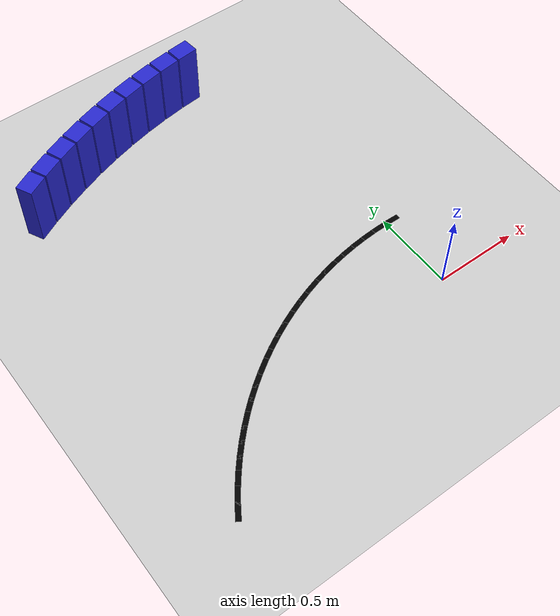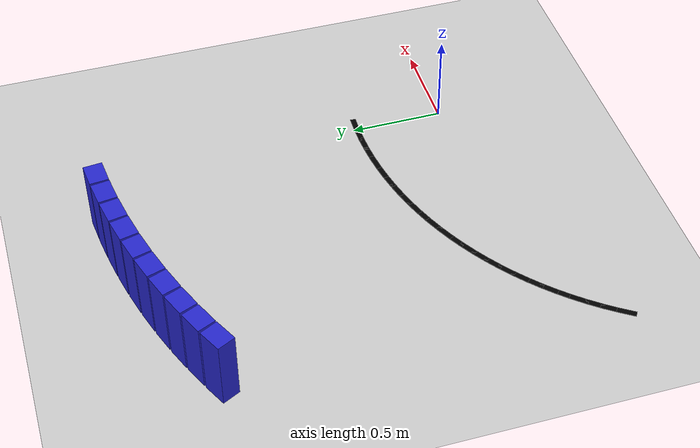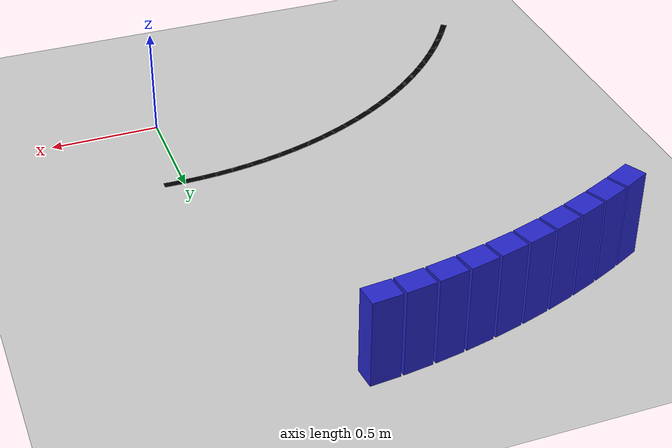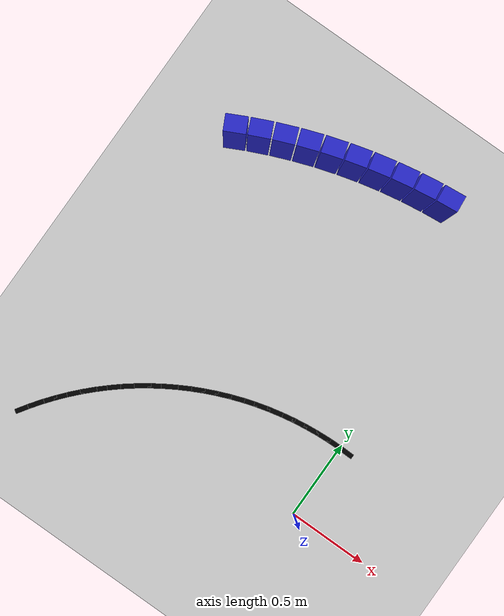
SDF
<sdf version="1.6">
 <world name="new_race_track">
  <include><uri>model://ground_plane</uri></include>
  <include><uri>model://sun</uri></include>
  <model name="race_track">
   <static>true</static>
   <link name="wall_link_108">
    <collision name="c"><geometry><box><size>0.1305 0.1 0.4</size></box></geometry></collision>
    <visual name="v">
     <geometry><box><size>0.1305 0.1 0.4</size></box></geometry>
     <material><ambient>0.15 0.15 0.8 1</ambient><diffuse>0.15 0.15 0.8 1</diffuse></material>
    </visual>
    <pose>-1.5636 1.6109 0.200 0 0 0.4632</pose>
   </link>
   <link name="wall_link_109">
    <collision name="c"><geometry><box><size>0.1305 0.1 0.4</size></box></geometry></collision>
    <visual name="v">
     <geometry><box><size>0.1305 0.1 0.4</size></box></geometry>
     <material><ambient>0.15 0.15 0.8 1</ambient><diffuse>0.15 0.15 0.8 1</diffuse></material>
    </visual>
    <pose>-1.4363 1.6713 0.200 0 0 0.4229</pose>
   </link>
   <link name="wall_link_110">
    <collision name="c"><geometry><box><size>0.1305 0.1 0.4</size></box></geometry></collision>
    <visual name="v">
     <geometry><box><size>0.1305 0.1 0.4</size></box></geometry>
     <material><ambient>0.15 0.15 0.8 1</ambient><diffuse>0.15 0.15 0.8 1</diffuse></material>
    </visual>
    <pose>-1.3066 1.7265 0.200 0 0 0.3826</pose>
   </link>
   <link name="wall_link_111">
    <collision name="c"><geometry><box><size>0.1305 0.1 0.4</size></box></geometry></collision>
    <visual name="v">
     <geometry><box><size>0.1305 0.1 0.4</size></box></geometry>
     <material><ambient>0.15 0.15 0.8 1</ambient><diffuse>0.15 0.15 0.8 1</diffuse></material>
    </visual>
    <pose>-1.1748 1.7765 0.200 0 0 0.3424</pose>
   </link>
   <link name="wall_link_112">
    <collision name="c"><geometry><box><size>0.1305 0.1 0.4</size></box></geometry></collision>
    <visual name="v">
     <geometry><box><size>0.1305 0.1 0.4</size></box></geometry>
     <material><ambient>0.15 0.15 0.8 1</ambient><diffuse>0.15 0.15 0.8 1</diffuse></material>
    </visual>
    <pose>-1.0411 1.8211 0.200 0 0 0.3021</pose>
   </link>
   <link name="wall_link_113">
    <collision name="c"><geometry><box><size>0.1305 0.1 0.4</size></box></geometry></collision>
    <visual name="v">
     <geometry><box><size>0.1305 0.1 0.4</size></box></geometry>
     <material><ambient>0.15 0.15 0.8 1</ambient><diffuse>0.15 0.15 0.8 1</diffuse></material>
    </visual>
    <pose>-0.9058 1.8603 0.200 0 0 0.2618</pose>
   </link>
   <link name="wall_link_114">
    <collision name="c"><geometry><box><size>0.1305 0.1 0.4</size></box></geometry></collision>
    <visual name="v">
     <geometry><box><size>0.1305 0.1 0.4</size></box></geometry>
     <material><ambient>0.15 0.15 0.8 1</ambient><diffuse>0.15 0.15 0.8 1</diffuse></material>
    </visual>
    <pose>-0.7689 1.8941 0.200 0 0 0.2215</pose>
   </link>
   <link name="wall_link_115">
    <collision name="c"><geometry><box><size>0.1305 0.1 0.4</size></box></geometry></collision>
    <visual name="v">
     <geometry><box><size>0.1305 0.1 0.4</size></box></geometry>
     <material><ambient>0.15 0.15 0.8 1</ambient><diffuse>0.15 0.15 0.8 1</diffuse></material>
    </visual>
    <pose>-0.6308 1.9223 0.200 0 0 0.1812</pose>
   </link>
   <link name="wall_link_116">
    <collision name="c"><geometry><box><size>0.1305 0.1 0.4</size></box></geometry></collision>
    <visual name="v">
     <geometry><box><size>0.1305 0.1 0.4</size></box></geometry>
     <material><ambient>0.15 0.15 0.8 1</ambient><diffuse>0.15 0.15 0.8 1</diffuse></material>
    </visual>
    <pose>-0.4917 1.9449 0.200 0 0 0.1410</pose>
   </link>
   <link name="wall_link_117">
    <collision name="c"><geometry><box><size>0.1305 0.1 0.4</size></box></geometry></collision>
    <visual name="v">
     <geometry><box><size>0.1305 0.1 0.4</size></box></geometry>
     <material><ambient>0.15 0.15 0.8 1</ambient><diffuse>0.15 0.15 0.8 1</diffuse></material>
    </visual>
    <pose>-0.3518 1.9619 0.200 0 0 0.1007</pose>
   </link>
   <link name="line_link_1022">
    <visual name="v">
     <geometry><box><size>0.1005 0.03 0.002</size></box></geometry>
     <material><ambient>0 0 0 1</ambient><diffuse>0 0 0 1</diffuse></material>
    </visual>
    <pose>-1.6682 -0.4175 0.002 0 0 0.9868</pose>
   </link>
   <link name="line_link_1023">
    <visual name="v">
     <geometry><box><size>0.1005 0.03 0.002</size></box></geometry>
     <material><ambient>0 0 0 1</ambient><diffuse>0 0 0 1</diffuse></material>
    </visual>
    <pose>-1.6224 -0.3512 0.002 0 0 0.9465</pose>
   </link>
   <link name="line_link_1024">
    <visual name="v">
     <geometry><box><size>0.1005 0.03 0.002</size></box></geometry>
     <material><ambient>0 0 0 1</ambient><diffuse>0 0 0 1</diffuse></material>
    </visual>
    <pose>-1.5740 -0.2868 0.002 0 0 0.9062</pose>
   </link>
   <link name="line_link_1025">
    <visual name="v">
     <geometry><box><size>0.1005 0.03 0.002</size></box></geometry>
     <material><ambient>0 0 0 1</ambient><diffuse>0 0 0 1</diffuse></material>
    </visual>
    <pose>-1.5231 -0.2244 0.002 0 0 0.8660</pose>
   </link>
   <link name="line_link_1026">
    <visual name="v">
     <geometry><box><size>0.1005 0.03 0.002</size></box></geometry>
     <material><ambient>0 0 0 1</ambient><diffuse>0 0 0 1</diffuse></material>
    </visual>
    <pose>-1.4697 -0.1642 0.002 0 0 0.8257</pose>
   </link>
   <link name="line_link_1027">
    <visual name="v">
     <geometry><box><size>0.1005 0.03 0.002</size></box></geometry>
     <material><ambient>0 0 0 1</ambient><diffuse>0 0 0 1</diffuse></material>
    </visual>
    <pose>-1.4139 -0.1061 0.002 0 0 0.7854</pose>
   </link>
   <link name="line_link_1028">
    <visual name="v">
     <geometry><box><size>0.1005 0.03 0.002</size></box></geometry>
     <material><ambient>0 0 0 1</ambient><diffuse>0 0 0 1</diffuse></material>
    </visual>
    <pose>-1.3558 -0.0503 0.002 0 0 0.7451</pose>
   </link>
   <link name="line_link_1029">
    <visual name="v">
     <geometry><box><size>0.1005 0.03 0.002</size></box></geometry>
     <material><ambient>0 0 0 1</ambient><diffuse>0 0 0 1</diffuse></material>
    </visual>
    <pose>-1.2956 0.0031 0.002 0 0 0.7048</pose>
   </link>
   <link name="line_link_1030">
    <visual name="v">
     <geometry><box><size>0.1005 0.03 0.002</size></box></geometry>
     <material><ambient>0 0 0 1</ambient><diffuse>0 0 0 1</diffuse></material>
    </visual>
    <pose>-1.2332 0.0540 0.002 0 0 0.6646</pose>
   </link>
   <link name="line_link_1031">
    <visual name="v">
     <geometry><box><size>0.1005 0.03 0.002</size></box></geometry>
     <material><ambient>0 0 0 1</ambient><diffuse>0 0 0 1</diffuse></material>
    </visual>
    <pose>-1.1688 0.1024 0.002 0 0 0.6243</pose>
   </link>
   <link name="line_link_1032">
    <visual name="v">
     <geometry><box><size>0.1005 0.03 0.002</size></box></geometry>
     <material><ambient>0 0 0 1</ambient><diffuse>0 0 0 1</diffuse></material>
    </visual>
    <pose>-1.1025 0.1482 0.002 0 0 0.5840</pose>
   </link>
   <link name="line_link_1033">
    <visual name="v">
     <geometry><box><size>0.1005 0.03 0.002</size></box></geometry>
     <material><ambient>0 0 0 1</ambient><diffuse>0 0 0 1</diffuse></material>
    </visual>
    <pose>-1.0345 0.1912 0.002 0 0 0.5437</pose>
   </link>
   <link name="line_link_1034">
    <visual name="v">
     <geometry><box><size>0.1005 0.03 0.002</size></box></geometry>
     <material><ambient>0 0 0 1</ambient><diffuse>0 0 0 1</diffuse></material>
    </visual>
    <pose>-0.9647 0.2315 0.002 0 0 0.5035</pose>
   </link>
   <link name="line_link_1035">
    <visual name="v">
     <geometry><box><size>0.1005 0.03 0.002</size></box></geometry>
     <material><ambient>0 0 0 1</ambient><diffuse>0 0 0 1</diffuse></material>
    </visual>
    <pose>-0.8934 0.2689 0.002 0 0 0.4632</pose>
   </link>
   <link name="line_link_1036">
    <visual name="v">
     <geometry><box><size>0.1005 0.03 0.002</size></box></geometry>
     <material><ambient>0 0 0 1</ambient><diffuse>0 0 0 1</diffuse></material>
    </visual>
    <pose>-0.8207 0.3034 0.002 0 0 0.4229</pose>
   </link>
   <link name="line_link_1037">
    <visual name="v">
     <geometry><box><size>0.1005 0.03 0.002</size></box></geometry>
     <material><ambient>0 0 0 1</ambient><diffuse>0 0 0 1</diffuse></material>
    </visual>
    <pose>-0.7466 0.3350 0.002 0 0 0.3826</pose>
   </link>
   <link name="line_link_1038">
    <visual name="v">
     <geometry><box><size>0.1005 0.03 0.002</size></box></geometry>
     <material><ambient>0 0 0 1</ambient><diffuse>0 0 0 1</diffuse></material>
    </visual>
    <pose>-0.6713 0.3636 0.002 0 0 0.3424</pose>
   </link>
   <link name="line_link_1039">
    <visual name="v">
     <geometry><box><size>0.1005 0.03 0.002</size></box></geometry>
     <material><ambient>0 0 0 1</ambient><diffuse>0 0 0 1</diffuse></material>
    </visual>
    <pose>-0.5949 0.3891 0.002 0 0 0.3021</pose>
   </link>
   <link name="line_link_1040">
    <visual name="v">
     <geometry><box><size>0.1005 0.03 0.002</size></box></geometry>
     <material><ambient>0 0 0 1</ambient><diffuse>0 0 0 1</diffuse></material>
    </visual>
    <pose>-0.5175 0.4115 0.002 0 0 0.2618</pose>
   </link>
   <link name="line_link_1041">
    <visual name="v">
     <geometry><box><size>0.1005 0.03 0.002</size></box></geometry>
     <material><ambient>0 0 0 1</ambient><diffuse>0 0 0 1</diffuse></material>
    </visual>
    <pose>-0.4393 0.4307 0.002 0 0 0.2215</pose>
   </link>
   <link name="line_link_1042">
    <visual name="v">
     <geometry><box><size>0.1005 0.03 0.002</size></box></geometry>
     <material><ambient>0 0 0 1</ambient><diffuse>0 0 0 1</diffuse></material>
    </visual>
    <pose>-0.3604 0.4468 0.002 0 0 0.1812</pose>
   </link>
   <link name="line_link_1043">
    <visual name="v">
     <geometry><box><size>0.1005 0.03 0.002</size></box></geometry>
     <material><ambient>0 0 0 1</ambient><diffuse>0 0 0 1</diffuse></material>
    </visual>
    <pose>-0.2809 0.4598 0.002 0 0 0.1410</pose>
   </link>
   <link name="line_link_1044">
    <visual name="v">
     <geometry><box><size>0.1005 0.03 0.002</size></box></geometry>
     <material><ambient>0 0 0 1</ambient><diffuse>0 0 0 1</diffuse></material>
    </visual>
    <pose>-0.2010 0.4695 0.002 0 0 0.1007</pose>
   </link>
   <link name="line_link_1045">
    <visual name="v">
     <geometry><box><size>0.1005 0.03 0.002</size></box></geometry>
     <material><ambient>0 0 0 1</ambient><diffuse>0 0 0 1</diffuse></material>
    </visual>
    <pose>-0.1207 0.4759 0.002 0 0 0.0604</pose>
   </link>
   <link name="line_link_1046">
    <visual name="v">
     <geometry><box><size>0.1005 0.03 0.002</size></box></geometry>
     <material><ambient>0 0 0 1</ambient><diffuse>0 0 0 1</diffuse></material>
    </visual>
    <pose>-0.0403 0.4792 0.002 0 0 0.0201</pose>
   </link>
   <link name="line_link_1047">
    <visual name="v">
     <geometry><box><size>0.1005 0.03 0.002</size></box></geometry>
     <material><ambient>0 0 0 1</ambient><diffuse>0 0 0 1</diffuse></material>
    </visual>
    <pose>0.0403 0.4792 0.002 0 0 -0.0201</pose>
   </link>
  </model>
 </world>
</sdf>
